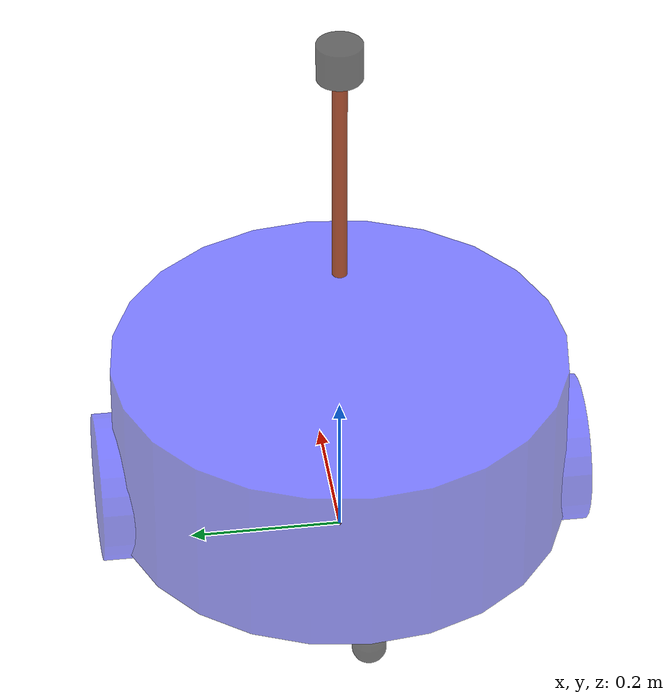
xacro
<robot xmlns:xacro="http://wiki.ros.org/xacro" name="$(arg prefix)mycarwithlidarandcamera">
    <!-- 定义参数 -->
    <xacro:arg name="prefix" default="" />
    <xacro:arg name="namespace" default="" />

    <!-- 属性定义 -->
    <xacro:property name="footprint_radius" value="0.003"/>
    <xacro:property name="base_radius" value="0.3"/>
    <xacro:property name="base_length" value="0.24"/>
    <xacro:property name="lidi" value="0.045"/>
    <xacro:property name="base_joint_z" value="${base_length/2 + lidi}"/>
    <xacro:property name="wheel_radius" value="0.0975"/>
    <xacro:property name="wheel_length" value="0.045"/>
    <xacro:property name="PI" value="3.1415927"/>
    <xacro:property name="wheel_joint_Z" value="${-base_length/2 - lidi + wheel_radius}"/>
    <xacro:property name="small_radius" value="0.0225"/>
    <xacro:property name="small_jointz" value="${-base_length/2 - lidi + small_radius}"/>
    <xacro:property name="cam_x" value="0.02" />
    <xacro:property name="cam_y" value="0.05" />
    <xacro:property name="cam_z" value="0.05" />
    <xacro:property name="cam_off_x" value="0.24" />
    <xacro:property name="cam_off_y" value="0" />
    <xacro:property name="cam_off_z" value="0.245" />
    <xacro:property name="support_radius" value="0.01" />
    <xacro:property name="support_length" value="0.3" />
    <xacro:property name="laser_radius" value="0.03" />
    <xacro:property name="laser_length" value="0.05" />
    <xacro:property name="support_off_x" value="0" />
    <xacro:property name="support_off_y" value="0" />
    <xacro:property name="support_off_z" value="0.4" />
    <xacro:property name="lidar_off_x" value="0" />
    <xacro:property name="lidar_off_y" value="0" />
    <xacro:property name="lidar_off_z" value="${support_length/2 + laser_length/2}" />

    <!-- 惯性矩阵宏定义 -->
    <xacro:macro name="sphere_inertial_matrix" params="m r">
        <inertial>
            <mass value="${m}" />
            <inertia ixx="${2*m*r*r/5}" ixy="0" ixz="0"
                     iyy="${2*m*r*r/5}" iyz="0"
                     izz="${2*m*r*r/5}" />
        </inertial>
    </xacro:macro>

    <xacro:macro name="cylinder_inertial_matrix" params="m r h">
        <inertial>
            <mass value="${m}" />
            <inertia ixx="${m*(3*r*r+h*h)/12}" ixy="0" ixz="0"
                     iyy="${m*(3*r*r+h*h)/12}" iyz="0"
                     izz="${m*r*r/2}" />
        </inertial>
    </xacro:macro>

    <xacro:macro name="Box_inertial_matrix" params="m l w h">
        <inertial>
            <mass value="${m}" />
            <inertia ixx="${m*(h*h + l*l)/12}" ixy="0" ixz="0"
                     iyy="${m*(w*w + l*l)/12}" iyz="0"
                     izz="${m*(w*w + h*h)/12}" />
        </inertial>
    </xacro:macro>

    <!-- 车轮宏定义 -->
    <xacro:macro name="wheel_func" params="wheel_name flag">
        <link name="$(arg prefix)${wheel_name}_wheel">
            <visual>
                <geometry>
                    <cylinder radius="${wheel_radius}" length="${wheel_length}" />
                </geometry>
                <origin xyz="0 0 0" rpy="${PI/2} 0 0" />
                <material name="wheel_color">
                    <color rgba="0 0 1.0 0.5 0.3" />
                </material>
            </visual>
            <collision>
                <geometry>
                    <cylinder radius="${wheel_radius}" length="${wheel_length}" />
                </geometry>
                <origin xyz="0.0 0.0 0.0" rpy="${PI / 2} 0.0 0.0" />
            </collision>
            <xacro:cylinder_inertial_matrix m="9" r="${wheel_radius}" h="${wheel_length}" />
        </link>
        <joint name="$(arg prefix)base_link2_${wheel_name}" type="continuous">
            <parent link="$(arg prefix)base_link" />
            <child link="$(arg prefix)${wheel_name}_wheel"/>
            <origin xyz="0 ${0.3 * flag} ${wheel_joint_Z}" />
            <axis xyz="0 1 0" />
        </joint>
        <gazebo reference="$(arg prefix)${wheel_name}_wheel">
            <material>Gazebo/Red</material>
        </gazebo>
    </xacro:macro>

    <xacro:macro name="small_wheel_func" params="small_wheel_name flag">
        <link name="$(arg prefix)${small_wheel_name}_wheel">
            <visual>
                <geometry>
                    <sphere radius="${small_radius}" />
                </geometry>
                <origin xyz="0 0 0" rpy="0 0 0" />
                <material name="black">
                    <color rgba="0.0 0.0 0.0 0.6" />
                </material>
            </visual>
            <collision>
                <geometry>
                    <sphere radius="${small_radius}" />
                </geometry>
                <origin xyz="0 0 0" rpy="0 0 0" />
            </collision>
            <xacro:sphere_inertial_matrix m="0.72" r="${small_radius}" />
        </link>
        <joint name="$(arg prefix)${small_wheel_name}2base_link" type="continuous">
            <parent link="$(arg prefix)base_link" />
            <child link="$(arg prefix)${small_wheel_name}_wheel" />
            <origin xyz="${0.2775 * flag} 0 ${small_jointz}" />
            <axis xyz="1 1 1" />
        </joint>
        <gazebo reference="$(arg prefix)${small_wheel_name}_wheel">
            <material>Gazebo/Red</material>
        </gazebo>
    </xacro:macro>

    <!-- 驱动宏定义 -->
    <xacro:macro name="joint_trans" params="joint_name">
        <transmission name="$(arg prefix)${joint_name}_trans">
            <type>transmission_interface/SimpleTransmission</type>
            <joint name="$(arg prefix)${joint_name}">
                <hardwareInterface>hardware_interface/VelocityJointInterface</hardwareInterface>
            </joint>
            <actuator name="$(arg prefix)${joint_name}_motor">
                <hardwareInterface>hardware_interface/VelocityJointInterface</hardwareInterface>
                <mechanicalReduction>1</mechanicalReduction>
            </actuator>
        </transmission>
    </xacro:macro>

    <!-- 链接和关节定义 -->
    <!-- base_footprint -->
    <link name="$(arg prefix)base_footprint">
        <visual>
            <geometry>
                <sphere radius="${footprint_radius}" />
            </geometry>
        </visual>
    </link>

    <!-- base_link -->
    <link name="$(arg prefix)base_link">
        <visual>
            <geometry>
                <cylinder radius="${base_radius}" length="${base_length}" />
            </geometry>
            <origin xyz="0 0 0" rpy="0 0 0" />
            <material name="blue">
                <color rgba="0 0 1.0 0.5" />
            </material>
        </visual>
        <collision>
            <geometry>
                <cylinder radius="${base_radius}" length="${base_length}" />
            </geometry>
            <origin xyz="0 0 0" rpy="0 0 0" />
        </collision>
        <xacro:cylinder_inertial_matrix m="18" r="${base_radius}" h="${base_length}" />
    </link>
    <gazebo reference="$(arg prefix)base_link">
        <material>Gazebo/Yellow</material>
    </gazebo>

    <joint name="$(arg prefix)base_link2base_footprint" type="fixed">
        <parent link="$(arg prefix)base_footprint" />
        <child link="$(arg prefix)base_link"/>
        <origin xyz="0 0 ${base_joint_z}" />
    </joint>

    <!-- 车轮实例化 -->
    <xacro:wheel_func wheel_name="left" flag="1" />
    <xacro:wheel_func wheel_name="right" flag="-1" />
    <xacro:small_wheel_func small_wheel_name="front" flag="1" />
    <xacro:small_wheel_func small_wheel_name="back" flag="-1" />

    <!-- camera -->

    <!-- support 和 laser -->
    <link name="$(arg prefix)support">
        <visual>
            <geometry>
                <cylinder radius="${support_radius}" length="${support_length}" />
            </geometry>
            <origin xyz="0.0 0.0 0.0" rpy="0.0 0.0 0.0" />
            <material name="red">
                <color rgba="0.8 0.2 0.0 0.8" />
            </material>
        </visual>
        <collision>
            <geometry>
                <cylinder radius="${support_radius}" length="${support_length}" />
            </geometry>
            <origin xyz="0.0 0.0 0.0" rpy="0.0 0.0 0.0" />
        </collision>
        <xacro:cylinder_inertial_matrix m="0.1" r="${support_radius}" h="${support_length}" />
    </link>
    <gazebo reference="$(arg prefix)support">
        <material>Gazebo/Grey</material>
    </gazebo>
    <joint name="$(arg prefix)support2base_link" type="fixed">
        <parent link="$(arg prefix)base_link" />
        <child link="$(arg prefix)support" />
        <origin xyz="${support_off_x} ${support_off_y} ${support_off_z}" />
    </joint>

    <!-- 添加 support_depth 链接 -->
    <link name="$(arg prefix)support_depth" />
    <joint name="$(arg prefix)support2support_depth" type="fixed">
        <parent link="$(arg prefix)support" />
        <child link="$(arg prefix)support_depth" />
        <origin xyz="0 0 0" rpy="${-PI/2} 0 ${-PI/2}" />
    </joint>

    <link name="$(arg prefix)laser">
        <visual>
            <geometry>
                <cylinder radius="${laser_radius}" length="${laser_length}" />
            </geometry>
            <origin xyz="0.0 0.0 0.0" rpy="0.0 0.0 0.0" />
            <material name="black" />
        </visual>
        <collision>
            <geometry>
                <cylinder radius="${laser_radius}" length="${laser_length}" />
            </geometry>
            <origin xyz="0.0 0.0 0.0" rpy="0.0 0.0 0.0" />
        </collision>
        <xacro:cylinder_inertial_matrix m="0.15" r="${laser_radius}" h="${laser_length}" />
    </link>
    <joint name="$(arg prefix)laser2support" type="fixed">
        <parent link="$(arg prefix)support" />
        <child link="$(arg prefix)laser" />
        <origin xyz="${lidar_off_x} ${lidar_off_y} ${lidar_off_z}" />
    </joint>
    <gazebo reference="$(arg prefix)laser">
        <material>Gazebo/Black</material>
    </gazebo>

    <!-- Gazebo 插件和传感器 -->
    <!-- 驱动插件 -->
    <xacro:joint_trans joint_name="base_link2_left" />
    <xacro:joint_trans joint_name="base_link2_right" />
    <gazebo>
        <plugin name="$(arg prefix)differential_drive_controller" filename="libgazebo_ros_diff_drive.so">
            <rosDebugLevel>Debug</rosDebugLevel>
            <publishWheelTF>true</publishWheelTF>
            <robotNamespace>$(arg namespace)</robotNamespace>
            <publishTf>1</publishTf>
            <publishWheelJointState>true</publishWheelJointState>
            <alwaysOn>true</alwaysOn>
            <updateRate>100.0</updateRate>
            <legacyMode>true</legacyMode>
            <leftJoint>$(arg prefix)base_link2_left</leftJoint>
            <rightJoint>$(arg prefix)base_link2_right</rightJoint>
            <wheelSeparation>${base_radius * 2}</wheelSeparation>
            <wheelDiameter>${wheel_radius * 2}</wheelDiameter>
            <broadcastTF>1</broadcastTF>
            <wheelTorque>30</wheelTorque>
            <wheelAcceleration>1.8</wheelAcceleration>
            <commandTopic>$(arg namespace)/cmd_vel</commandTopic>
            <odometryFrame>$(arg prefix)odom</odometryFrame>
            <odometryTopic>$(arg namespace)/odom</odometryTopic>
            <robotBaseFrame>$(arg prefix)base_footprint</robotBaseFrame>
        </plugin>
    </gazebo>

    <!-- 摄像头传感器 -->

    <!-- 激光雷达传感器 -->
    <gazebo reference="$(arg prefix)laser">
        <sensor type="ray" name="$(arg prefix)rplidar">
            <pose>0 0 0 0 0 0</pose>
            <visualize>false</visualize>
            <update_rate>5.5</update_rate>
            <ray>
                <scan>
                    <horizontal>
                        <samples>360</samples>
                        <resolution>1</resolution>
                        <min_angle>-3</min_angle>
                        <max_angle>3</max_angle>
                    </horizontal>
                </scan>
                <range>
                    <min>0.10</min>
                    <max>30.0</max>
                    <resolution>0.01</resolution>
                </range>
                <noise>
                    <type>gaussian</type>
                    <mean>0.0</mean>
                    <stddev>0.01</stddev>
                </noise>
            </ray>
            <plugin name="$(arg prefix)gazebo_rplidar" filename="libgazebo_ros_laser.so">
                <topicName>$(arg namespace)/scan</topicName>
                <frameName>$(arg prefix)laser</frameName>
            </plugin>
        </sensor>
    </gazebo>

    <!-- Kinect 传感器 -->
    <gazebo reference="$(arg prefix)support">
        <sensor type="depth" name="$(arg prefix)kinect_camera">
            <always_on>true</always_on>
            <update_rate>20.0</update_rate>
            <camera>
                <horizontal_fov>${60.0*PI/180.0}</horizontal_fov>
                <image>
                    <format>R8G8B8</format>
                    <width>640</width>
                    <height>480</height>
                </image>
                <clip>
                    <near>0.05</near>
                    <far>10.0</far>
                </clip>
            </camera>
            <plugin name="$(arg prefix)kinect_camera_controller" filename="libgazebo_ros_openni_kinect.so">
                <cameraName>$(arg namespace)/camera</cameraName>
                <alwaysOn>true</alwaysOn>
                <updateRate>10</updateRate>
                <imageTopicName>$(arg namespace)/rgb/image_raw</imageTopicName>
                <depthImageTopicName>$(arg namespace)/depth/image_raw</depthImageTopicName>
                <pointCloudTopicName>$(arg namespace)/depth/points</pointCloudTopicName>
                <cameraInfoTopicName>$(arg namespace)/rgb/camera_info</cameraInfoTopicName>
                <depthImageCameraInfoTopicName>$(arg namespace)/depth/camera_info</depthImageCameraInfoTopicName>
                <frameName>$(arg prefix)support_depth</frameName>
                <baseline>0.1</baseline>
                <distortion_k1>0.0</distortion_k1>
                <distortion_k2>0.0</distortion_k2>
                <distortion_k3>0.0</distortion_k3>
                <distortion_t1>0.0</distortion_t1>
                <distortion_t2>0.0</distortion_t2>
                <pointCloudCutoff>0.2</pointCloudCutoff>
            </plugin>
        </sensor>
    </gazebo>
</robot>
